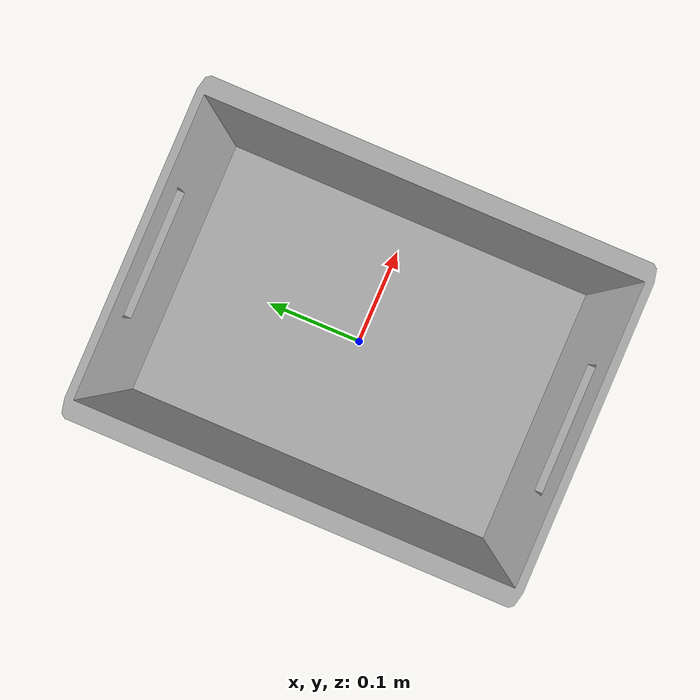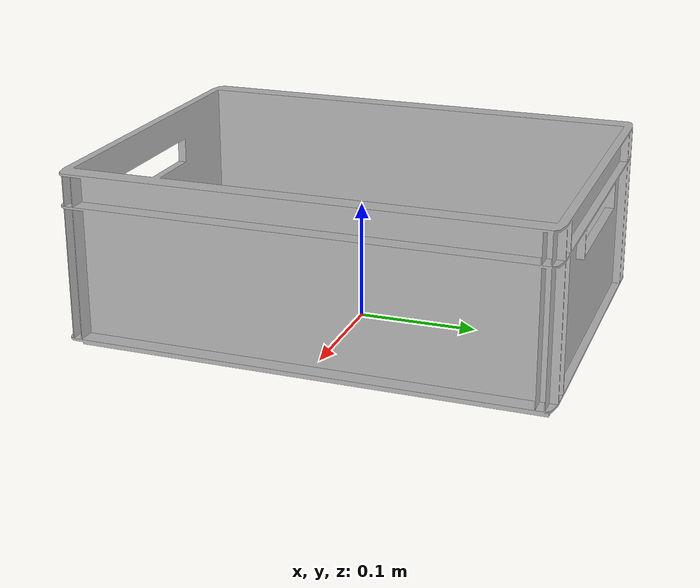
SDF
<?xml version="1.0"?>
<sdf version="1.4">

  <model name="European container Type C">

    <static>false</static>

    <link name="Container_C_structure">

       <pose>0 0 0 0 0 0</pose>

      <collision name="container_collision">
        <geometry>
                <box>
                  <size>.30 .40 .15</size>
                </box>
        </geometry>
      </collision>
      <visual name="container_C_visual">
        <geometry>
          <mesh>
            <uri>model://eurocontainer_C/meshes/EuroContainer_C.dae</uri>
          </mesh>
        </geometry>

      </visual>

    </link>

  </model>
</sdf>
